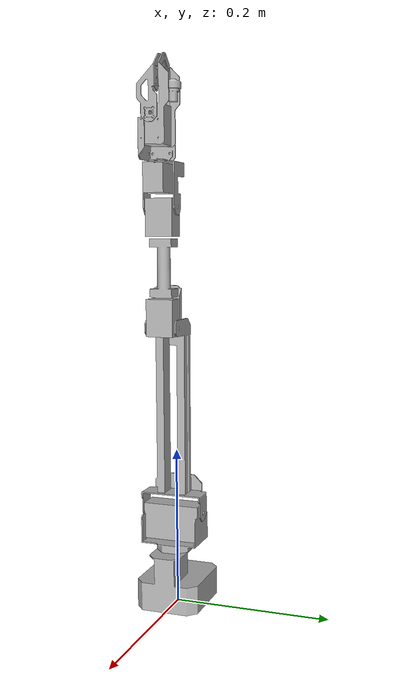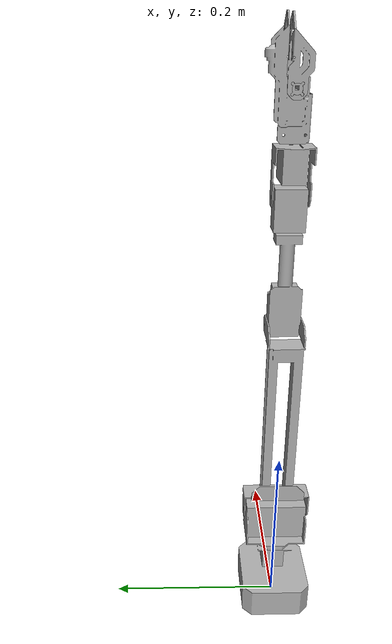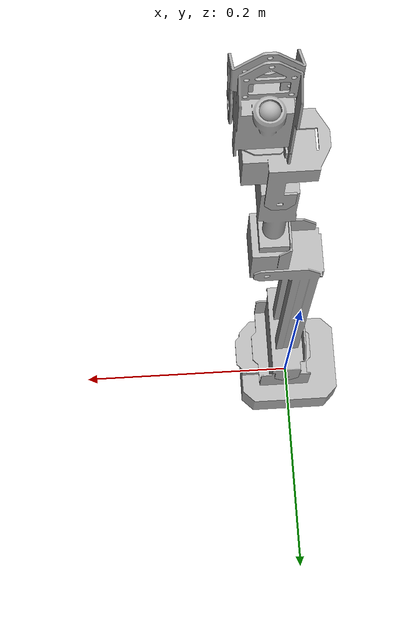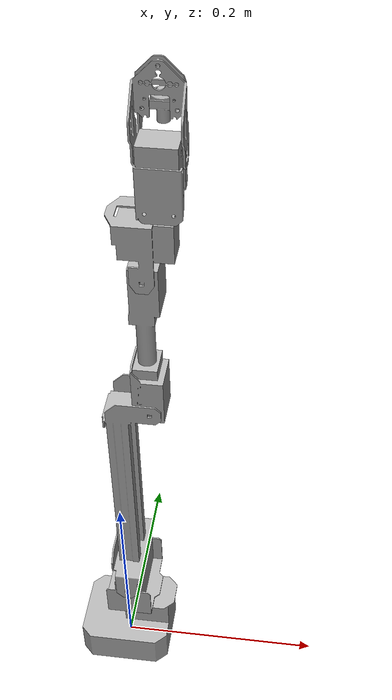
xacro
<?xml version="1.0"?>
<robot xmlns:xacro="http://www.ros.org/wiki/xacro" name="roarm_m3">

<!-- Single entry-point declarations for standalone RoArm M3. -->
<xacro:macro name="use_gazebo" params="use_gazebo"></xacro:macro>
<xacro:arg name="use_gazebo" default="false"/>
<xacro:property name="use_gazebo" value="$(arg use_gazebo)"/>

<xacro:macro name="GZ_VERSION" params="GZ_VERSION"></xacro:macro>
<xacro:arg name="GZ_VERSION" default="classic"/>
<xacro:property name="GZ_VERSION" value="$(arg GZ_VERSION)"/>

<xacro:macro name="add_camera" params="add_camera"></xacro:macro>
<xacro:arg name="add_camera" default="false"/>
<xacro:property name="add_camera" value="$(arg add_camera)"/>

<xacro:macro name="add_depth_camera" params="add_depth_camera"></xacro:macro>
<xacro:arg name="add_depth_camera" default="false"/>
<xacro:property name="add_depth_camera" value="$(arg add_depth_camera)"/>

<xacro:include filename="$(find roarm_description)/urdf/bases/roarm_m3.xacro" />

<xacro:arg name="initial_positions_file" default="initial_positions.yaml" />
<xacro:include filename="roarm_m3.ros2_control.xacro" />
<xacro:roarm_m3_ros2_control use_gazebo="$(arg use_gazebo)" GZ_VERSION="$(arg GZ_VERSION)" initial_positions_file="$(arg initial_positions_file)"/>

<gazebo>
    <xacro:if value="${GZ_VERSION == 'classic'}">
    <plugin filename="libgazebo_ros2_control.so" name="gazebo_ros2_control">
        <parameters>$(find roarm_moveit)/config/roarm_m3/ros2_controllers.yaml</parameters>
    </plugin>
    </xacro:if>
    <xacro:if value="${GZ_VERSION == 'harmonic'}">
    <plugin name="gz_ros2_control::GazeboSimROS2ControlPlugin" filename="libgz_ros2_control-system.so">
        <parameters>$(find roarm_moveit)/config/roarm_m3/ros2_controllers.yaml</parameters>
    </plugin>
    <plugin filename="gz-sim-sensors-system" name="gz::sim::systems::Sensors">
        <render_engine>ogre2</render_engine>
    </plugin>
    </xacro:if>
</gazebo>
</robot>

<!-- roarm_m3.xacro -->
<robot name="roarm_m3" xmlns:xacro="http://www.ros.org/wiki/xacro">

<xacro:include filename="$(find roarm_description)/urdf/materials.xacro" />
<xacro:include filename="$(find roarm_description)/urdf/gazebo/roarm_m3.trans" />
<xacro:include filename="$(find roarm_description)/urdf/gazebo/roarm_m3.gazebo" />

<!-- Declared here: this file is also an entry for roarm_description/display.launch.py -->
<xacro:arg name="add_depth_camera" default="false"/>
<xacro:property name="add_depth_camera" value="$(arg add_depth_camera)"/>

<xacro:arg name="add_camera" default="false"/>
<xacro:property name="add_camera" value="$(arg add_camera)"/>

<xacro:arg name="GZ_VERSION" default="classic"/>
<xacro:property name="GZ_VERSION" value="$(arg GZ_VERSION)"/>

<xacro:if value="${add_depth_camera}">
<xacro:include filename="$(find roarm_description)/urdf/camera/depth_camera.xacro" />
<xacro:include filename="$(find roarm_description)/urdf/camera/depth_camera.gazebo.xacro" />
<xacro:oak use_gazebo="true">
  <parent link="link4" />
  <origin xyz="-0.066257 -0.0523 0" rpy="1.5708 0 -1.5708" />
  <!-- oak cam in hand -->
</xacro:oak>
</xacro:if>

<xacro:if value="${add_camera}">
<xacro:include filename="$(find roarm_description)/urdf/camera/camera.xacro" />
<xacro:include filename="$(find roarm_description)/urdf/camera/camera.gazebo.xacro" />
<xacro:cam use_gazebo="true">
  <parent link="link4" />
  <origin xyz="-0.046 -0.072938 0" rpy="1.5708 0 -1.3963" />
  <!-- usb cam in hand -->
</xacro:cam>
</xacro:if>

<link name="world"></link>

<link name="base_link">
  <inertial>
    <origin xyz="0.0032 0 0.0417" rpy="0 0 0" />
    <mass value="0.2562183" />
    <inertia ixx="0.00029211" ixy="0" ixz="0" iyy="0.00035719" iyz="0" izz="0.000349421" />
  </inertial>
  <visual>
    <origin xyz="0 0 0" rpy="0 0 0"/>
    <geometry>
      <mesh filename="file://$(find roarm_description)/meshes/roarm_m3/base_link.stl" scale="0.001 0.001 0.001"/>
    </geometry>
    <material name="silver"/>
  </visual>
  <collision>
    <origin xyz="0 0 0" rpy="0 0 0"/>
    <geometry>
      <mesh filename="file://$(find roarm_description)/meshes/roarm_m3/base_link.stl" scale="0.001 0.001 0.001"/>
    </geometry>
  </collision>
</link>

<link name="link1">
  <inertial>
    <origin xyz="0 0 0.037" rpy="0 0 0" />
    <mass value="0.0729177" />
    <inertia ixx="4.68465E-05" ixy="0" ixz="0" iyy="3.32107E-05" iyz="0" izz="5.01023E-05" />
  </inertial>
  <visual>
    <origin xyz="-0.0 -0.0 -0.0" rpy="0 0 0"/>
    <geometry>
      <mesh filename="file://$(find roarm_description)/meshes/roarm_m3/link1.stl" scale="0.001 0.001 0.001"/>
    </geometry>
    <material name="silver"/>
  </visual>
  <collision>
    <origin xyz="-0.0 -0.0 -0.0" rpy="0 0 0"/>
    <geometry>
      <mesh filename="file://$(find roarm_description)/meshes/roarm_m3/link1.stl" scale="0.001 0.001 0.001"/>
    </geometry>
  </collision>
</link>

<link name="link2">
  <inertial>
    <origin xyz="0.119 0.012247 -0.0001 " rpy="0 0 0"/>
    <mass value="0.0703216" />
    <inertia ixx="5.46501E-05" ixy="0" ixz="0" iyy="0.000423091" iyz="0" izz="0.000404557" />
  </inertial>
  <visual>
    <origin xyz="0 0 0" rpy="0 0 0"/>
    <geometry>
      <mesh filename="file://$(find roarm_description)/meshes/roarm_m3/link2.stl" scale="0.001 0.001 0.001"/>
    </geometry>
    <material name="silver"/>
  </visual>
  <collision>
    <origin xyz="0 0 0" rpy="0 0 0"/>
    <geometry>
      <mesh filename="file://$(find roarm_description)/meshes/roarm_m3/link2.stl" scale="0.001 0.001 0.001"/>
    </geometry>
  </collision>
</link>

<link name="link3">
  <inertial>
    <origin xyz="-0.0015 -0.0765 0.00505" rpy="0 0 0"/>
    <mass value="0.021608"/>
    <inertia ixx="6.37699E-05" iyy="3.67026E-06" izz="6.28965E-05" ixy="0.0" iyz="0" ixz="0"/>
  </inertial>
  <visual>
    <origin xyz="0 0 0" rpy="0 0 0"/>
    <geometry>
      <mesh filename="file://$(find roarm_description)/meshes/roarm_m3/link3.stl" scale="0.001 0.001 0.001"/>
    </geometry>
    <material name="silver"/>
  </visual>
  <collision>
    <origin xyz="0 0 0" rpy="0 0 0"/>
    <geometry>
      <mesh filename="file://$(find roarm_description)/meshes/roarm_m3/link3.stl" scale="0.001 0.001 0.001"/>
    </geometry>
  </collision>
</link>

<link name="link4">
  <inertial>
    <origin xyz="-0.0015 -0.022 -0.00075" rpy="0 0 0"/>
    <mass value="0.0099933"/>
    <inertia ixx="4.53979E-06" iyy="3.78103E-06" izz="5.60238E-06" ixy="-0.0" iyz="-0.0" ixz="0.0"/>
  </inertial>
  <visual>
    <origin xyz="0 0 0" rpy="0 0 0"/>
    <geometry>
      <mesh filename="file://$(find roarm_description)/meshes/roarm_m3/link4.stl" scale="0.001 0.001 0.001"/>
    </geometry>
    <material name="silver"/>
  </visual>
  <collision>
    <origin xyz="0 0 0" rpy="0 0 0"/>
    <geometry>
      <mesh filename="file://$(find roarm_description)/meshes/roarm_m3/link4.stl" scale="0.001 0.001 0.001"/>
    </geometry>
  </collision>
</link>

<link name="link5">
  <inertial>
    <origin xyz="-0.0078 0 0.0595" rpy="0 0 0"/>
    <mass value="0.0153928"/>
    <inertia ixx="2.02869E-05" iyy="2.14427E-05" izz="4.39495E-06" ixy="-0.0" iyz="0" ixz="0"/>
  </inertial>
  <visual>
    <origin xyz="0 0 0" rpy="0 0 0"/>
    <geometry>
      <mesh filename="file://$(find roarm_description)/meshes/roarm_m3/link5.stl" scale="0.001 0.001 0.001"/>
    </geometry>
    <material name="silver"/>
  </visual>
  <collision>
    <origin xyz="0 0 0" rpy="0 0 0"/>
    <geometry>
      <mesh filename="file://$(find roarm_description)/meshes/roarm_m3/link5.stl" scale="0.001 0.001 0.001"/>
    </geometry>
  </collision>
</link>

<link name="gripper_link">
  <inertial>
    <origin xyz="0.027 0.0027 -0.018935" rpy="0 0 0"/>
    <mass value="0.0028708" />
    <inertia ixx="5.23216E-07" ixy="0" ixz="0" iyy="1.82071E-06" iyz="0" izz="1.60231E-06" />
  </inertial>
  <visual>
    <origin xyz="0 0 0" rpy="0 0 0"/>
    <geometry>
      <mesh filename="file://$(find roarm_description)/meshes/roarm_m3/gripper_link.stl" scale="0.001 0.001 0.001"/>
    </geometry>
    <material name="silver"/>
  </visual>
  <collision>
    <origin xyz="0 0 0" rpy="0 0 0"/>
    <geometry>
      <mesh filename="file://$(find roarm_description)/meshes/roarm_m3/gripper_link.stl" scale="0.001 0.001 0.001"/>
    </geometry>
  </collision>
</link>

<link name="hand_tcp"></link>

<joint name="world_to_base_link" type="fixed">
  <origin xyz="0.0 0.0 0.0" rpy="0 0 0"/>
  <parent link="world"/>
  <child link="base_link"/>
  <axis xyz="0.0 0.0 1.0"/>
</joint>

<joint name="base_link_to_link1" type="revolute">
  <origin xyz="0.0100000008759151 0.0 0.0716" rpy="0 0 0"/>
  <parent link="base_link"/>
  <child link="link1"/>
  <axis xyz="0.0 0.0 1.0"/>
  <limit
    lower="-3.1416"
    upper="3.1416"
    effort="20"
    velocity="3.14" />
</joint>

<joint name="link1_to_link2" type="revolute">
  <origin xyz="0.0 0.0 0.051959" rpy="-1.5708 -1.5708 0"/>
  <parent link="link1"/>
  <child link="link2"/>
  <axis xyz="-0.0 0 1.0"/>
  <limit
    lower="-1.5708"
    upper="1.5708"
    effort="20"
    velocity="3.14" />
</joint>

<joint name="link2_to_link3" type="revolute">
  <origin xyz="0.236815 0.030002 0" rpy="0 0 1.5708"/>
  <parent link="link2"/>
  <child link="link3"/>
  <axis xyz="0.0 0.0 1.0"/>
  <limit
    lower="0"
    upper="2.95"
    effort="20"
    velocity="3.14" />
</joint>

<joint name="link3_to_link4" type="revolute">
  <origin xyz="0.0 -0.144586 0" rpy="0 0 0"/>
  <parent link="link3"/>
  <child link="link4"/>
  <axis xyz="0.0 0.0 1.0"/>
  <limit
    lower="-1.5708"
    upper="1.5708"
    effort="20"
    velocity="3.14" />
</joint>

<joint name="link4_to_link5" type="revolute">
  <origin xyz="0.015147 -0.053653 0" rpy="1.5708 1.5708 0"/>
  <parent link="link4"/>
  <child link="link5"/>
  <axis xyz="0.0 0.0 1.0"/>
  <limit
    lower="-3.1416"
    upper="3.1416"
    effort="20"
    velocity="3.14" />
</joint>

<joint name="link5_to_gripper_link" type="revolute">
  <origin xyz="0.00 0.018821 0.052035" rpy="-1.5708 -1.5708 0"/>
  <parent link="link5"/>
  <child link="gripper_link"/>
  <axis xyz="0.0 -0.0 1.0"/>
  <limit
    lower="0"
    upper="1.5"
    effort="20"
    velocity="3.14" />
</joint>

<joint name="link5_to_hand_tcp" type="fixed">
  <origin xyz="0 0 0.115428" rpy="1.5708 -1.5708 0"/>
  <parent link="link5"/>
  <child link="hand_tcp"/>
  <axis xyz="0 0 0"/>
</joint>

</robot>

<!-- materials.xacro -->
<robot name="roarm_m3" xmlns:xacro="http://www.ros.org/wiki/xacro" >

<material name="silver">
  <color rgba="0.700 0.700 0.700 1.000"/>
</material>

</robot>

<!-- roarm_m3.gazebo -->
<robot name="roarm_m3" xmlns:xacro="http://www.ros.org/wiki/xacro" >

<xacro:property name="body_color" value="Gazebo/Silver" />

<gazebo reference="base_link">
  <material>${body_color}</material>
  <mu1>0.2</mu1>
  <mu2>0.2</mu2>
  <self_collide>true</self_collide>
  <gravity>true</gravity>
</gazebo>

<gazebo reference="link1">
  <material>${body_color}</material>
  <mu1>0.2</mu1>
  <mu2>0.2</mu2>
  <self_collide>true</self_collide>
</gazebo>

<gazebo reference="link2">
  <material>${body_color}</material>
  <mu1>0.2</mu1>
  <mu2>0.2</mu2>
  <self_collide>true</self_collide>
</gazebo>

<gazebo reference="link3">
  <material>${body_color}</material>
  <mu1>0.2</mu1>
  <mu2>0.2</mu2>
  <self_collide>true</self_collide>
</gazebo>

<gazebo reference="link4">
  <material>${body_color}</material>
  <mu1>0.2</mu1>
  <mu2>0.2</mu2>
  <self_collide>true</self_collide>
</gazebo>

<gazebo reference="link5">
  <material>${body_color}</material>
  <mu1>0.2</mu1>
  <mu2>0.2</mu2>
  <self_collide>true</self_collide>
</gazebo>

<gazebo reference="gripper_link">
  <material>${body_color}</material>
  <mu1>0.2</mu1>
  <mu2>0.2</mu2>
  <self_collide>true</self_collide>
</gazebo>

</robot>
